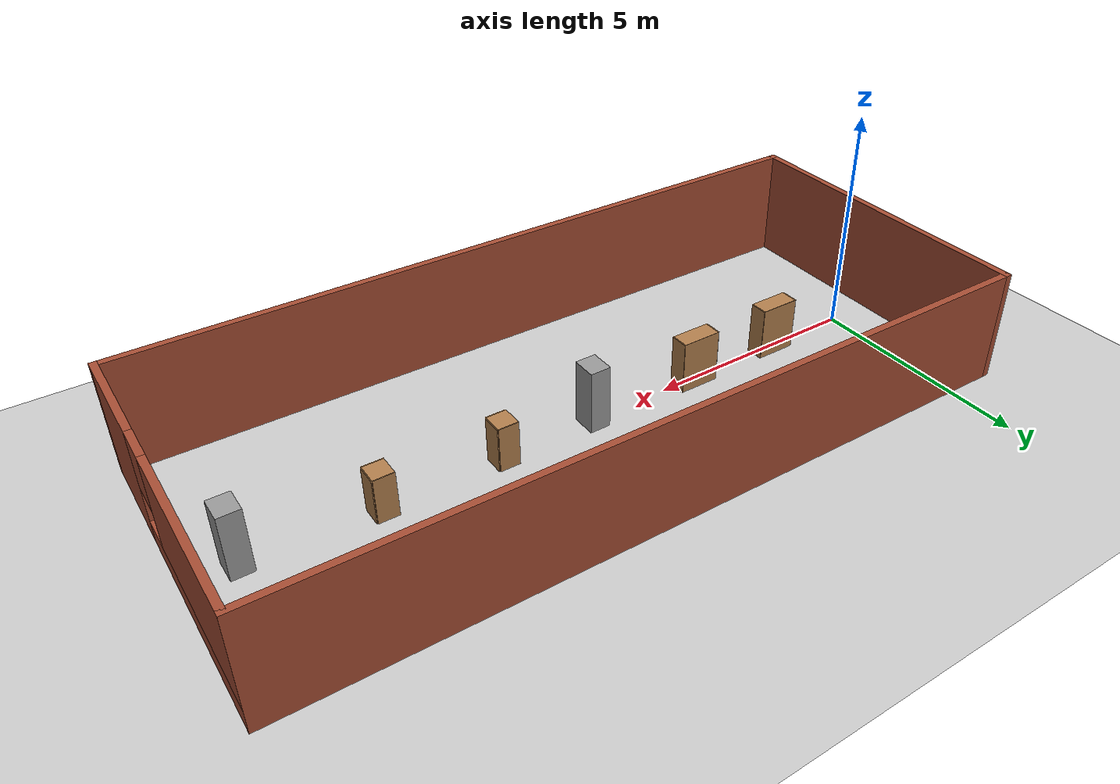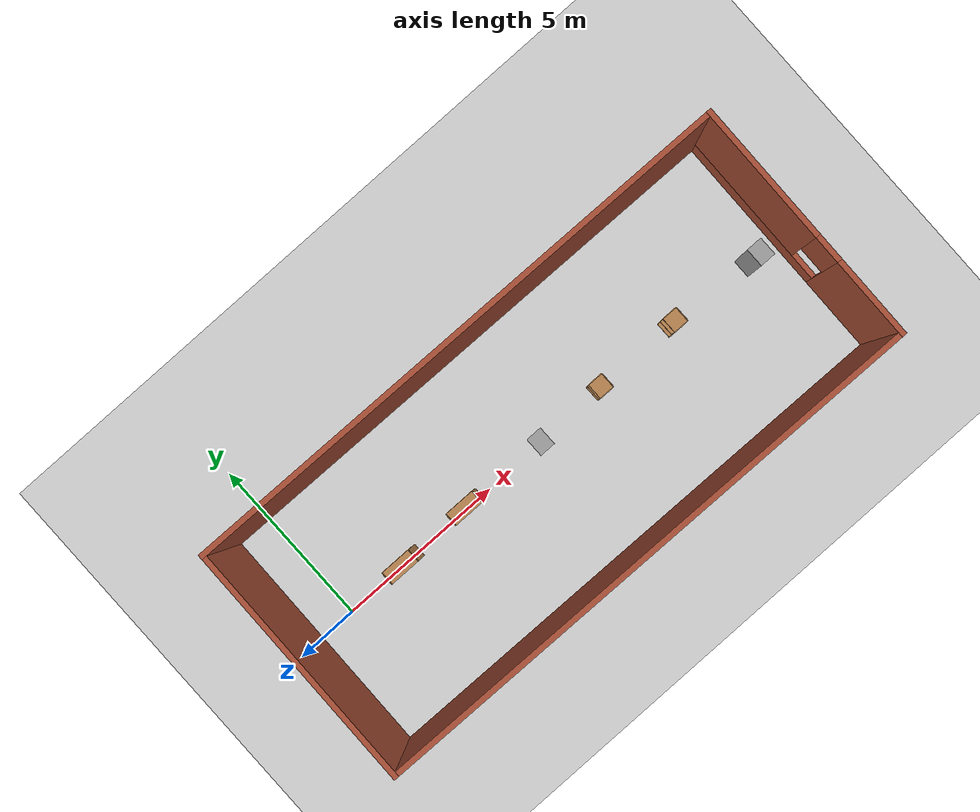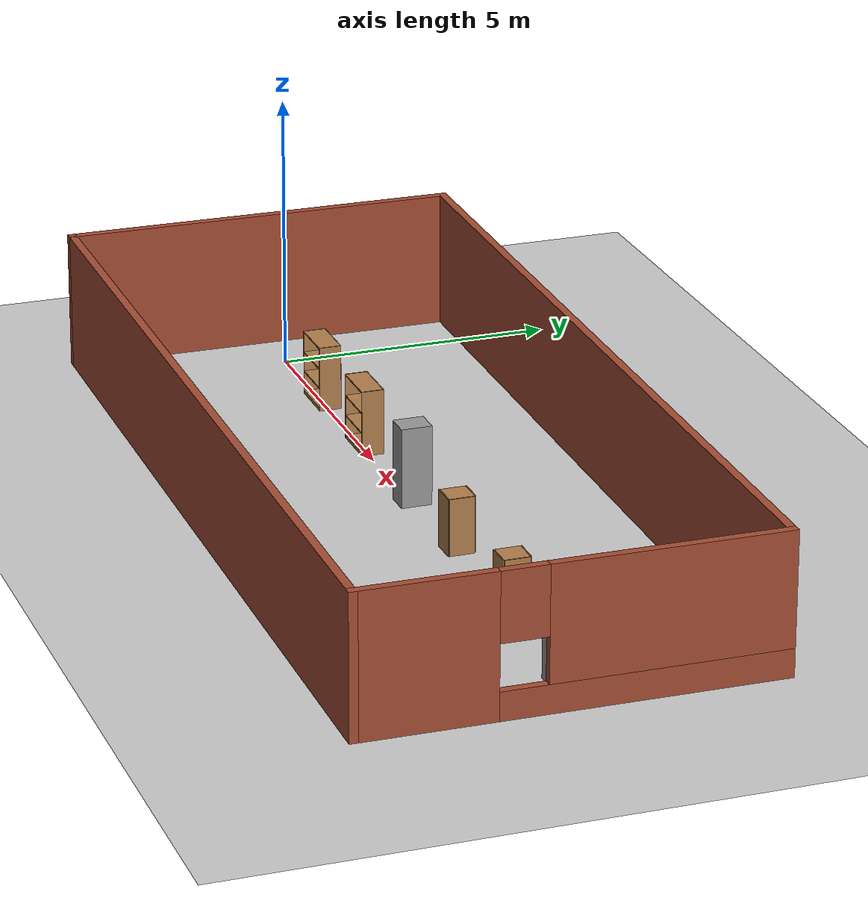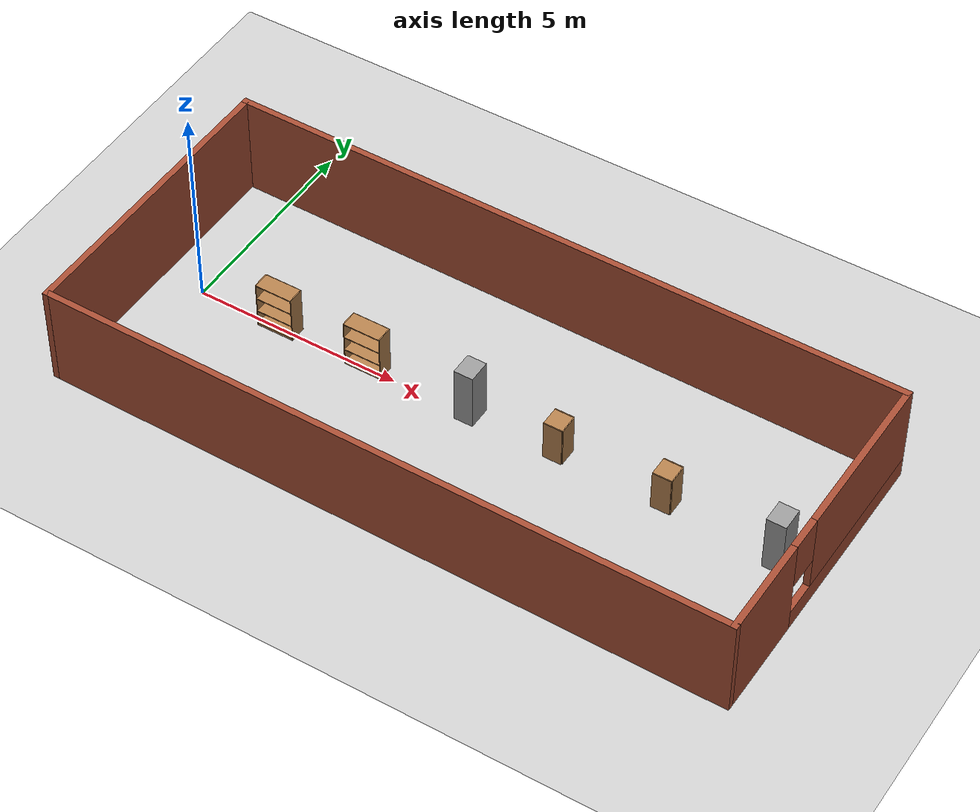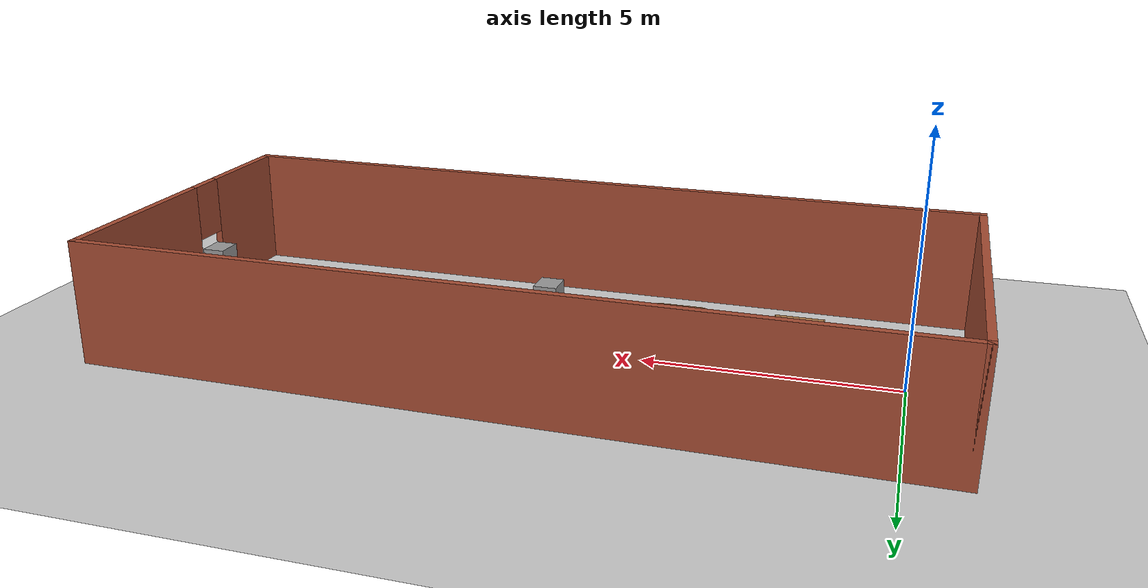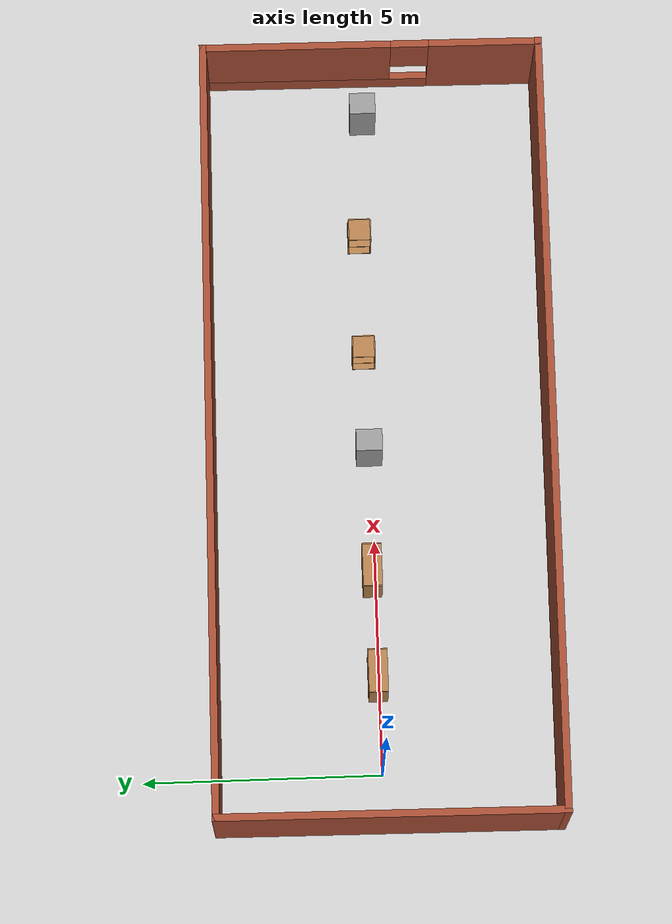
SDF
<sdf version="1.6">
 <world name="default">
  <light name="sun" type="directional">
   <pose>0 0 10 0 -0 0</pose>
   <diffuse>0.8 0.8 0.8 1</diffuse>
   <specular>0.2 0.2 0.2 1</specular>
   <attenuation>
    <range>1000</range>
    <constant>0.9</constant>
    <linear>0.01</linear>
    <quadratic>0.001</quadratic>
   </attenuation>
   <direction>-0.5 0.1 -0.9</direction>
  </light>
  <model name="ground_plane">
   <static>1</static>
   <link name="link">
    <collision name="collision">
     <geometry><plane><normal>0 0 1</normal><size>100 100</size></plane></geometry>
     <surface><friction><ode><mu>100</mu><mu2>50</mu2></ode></friction></surface>
    </collision>
    <visual name="visual">
     <cast_shadows>0</cast_shadows>
     <geometry><plane><normal>0 0 1</normal><size>100 100</size></plane></geometry>
     <material>
      <script><uri>file://media/materials/scripts/gazebo.material</uri><name>Gazebo/Grey</name></script>
     </material>
    </visual>
   </link>
  </model>
  <gravity>0 0 -9.8</gravity>
  <magnetic_field>6e-06 2.3e-05 -4.2e-05</magnetic_field>
  <atmosphere type="adiabatic"/>
  <physics name="default_physics" default="0" type="ode">
   <max_step_size>0.001</max_step_size>
   <real_time_factor>1</real_time_factor>
   <real_time_update_rate>1000</real_time_update_rate>
  </physics>
  <scene><ambient>0.4 0.4 0.4 1</ambient><background>0.7 0.7 0.7 1</background><shadows>1</shadows></scene>
  <audio><device>default</device></audio>
  <spherical_coordinates>
   <surface_model>EARTH_WGS84</surface_model>
   <latitude_deg>0</latitude_deg>
   <longitude_deg>0</longitude_deg>
   <elevation>0</elevation>
   <heading_deg>0</heading_deg>
  </spherical_coordinates>
  <model name="brickRoom">
   <pose>7.04678 -0.18264 0 0 -0 3.1327</pose>
   <link name="Wall_0">
    <pose>-8.175 0 0 0 -0 -1.5708</pose>
    <visual name="Wall_0_Visual_0">
     <pose>-2.42632 0 1.25 0 -0 0</pose>
     <geometry><box><size>2.39737 0.15 2.5</size></box></geometry>
     <material>
      <script><uri>file://media/materials/scripts/gazebo.material</uri><name>Gazebo/Bricks</name></script>
      <ambient>1 1 1 1</ambient>
     </material>
     <meta><layer>0</layer></meta>
    </visual>
    <collision name="Wall_0_Collision_0">
     <geometry><box><size>2.39737 0.15 2.5</size></box></geometry>
     <pose>-2.42632 0 1.25 0 -0 0</pose>
    </collision>
    <visual name="Wall_0_Visual_1">
     <pose>1.19868 0 0.25 0 -0 0</pose>
     <geometry><box><size>4.85263 0.15 0.5</size></box></geometry>
     <material>
      <script><uri>file://media/materials/scripts/gazebo.material</uri><name>Gazebo/Bricks</name></script>
      <ambient>1 1 1 1</ambient>
     </material>
     <meta><layer>0</layer></meta>
    </visual>
    <collision name="Wall_0_Collision_1">
     <geometry><box><size>4.85263 0.15 0.5</size></box></geometry>
     <pose>1.19868 0 0.25 0 -0 0</pose>
    </collision>
    <visual name="Wall_0_Visual_2">
     <pose>1.59868 0 1.5 0 -0 0</pose>
     <geometry><box><size>4.05263 0.15 2</size></box></geometry>
     <material>
      <script><uri>file://media/materials/scripts/gazebo.material</uri><name>Gazebo/Bricks</name></script>
      <ambient>1 1 1 1</ambient>
     </material>
     <meta><layer>0</layer></meta>
    </visual>
    <collision name="Wall_0_Collision_2">
     <geometry><box><size>4.05263 0.15 2</size></box></geometry>
     <pose>1.59868 0 1.5 0 -0 0</pose>
    </collision>
    <visual name="Wall_0_Visual_3">
     <pose>-0.827634 0 1.9 0 -0 0</pose>
     <geometry><box><size>0.8 0.15 1.2</size></box></geometry>
     <material>
      <script><uri>file://media/materials/scripts/gazebo.material</uri><name>Gazebo/Bricks</name></script>
      <ambient>1 1 1 1</ambient>
     </material>
     <meta><layer>0</layer></meta>
    </visual>
    <collision name="Wall_0_Collision_3">
     <geometry><box><size>0.8 0.15 1.2</size></box></geometry>
     <pose>-0.827634 0 1.9 0 -0 0</pose>
    </collision>
   </link>
   <link name="Wall_1">
    <collision name="Wall_1_Collision">
     <geometry><box><size>16.5 0.15 2.5</size></box></geometry>
     <pose>0 0 1.25 0 -0 0</pose>
    </collision>
    <visual name="Wall_1_Visual">
     <pose>0 0 1.25 0 -0 0</pose>
     <geometry><box><size>16.5 0.15 2.5</size></box></geometry>
     <material>
      <script><uri>file://media/materials/scripts/gazebo.material</uri><name>Gazebo/Bricks</name></script>
      <ambient>1 1 1 1</ambient>
     </material>
     <meta><layer>0</layer></meta>
    </visual>
    <pose>-0 -3.55 0 0 -0 0</pose>
   </link>
   <link name="Wall_2">
    <collision name="Wall_2_Collision">
     <geometry><box><size>7.25 0.15 2.5</size></box></geometry>
     <pose>0 0 1.25 0 -0 0</pose>
    </collision>
    <visual name="Wall_2_Visual">
     <pose>0 0 1.25 0 -0 0</pose>
     <geometry><box><size>7.25 0.15 2.5</size></box></geometry>
     <material>
      <script><uri>file://media/materials/scripts/gazebo.material</uri><name>Gazebo/Bricks</name></script>
      <ambient>1 1 1 1</ambient>
     </material>
     <meta><layer>0</layer></meta>
    </visual>
    <pose>8.175 0 0 0 -0 1.5708</pose>
   </link>
   <link name="Wall_3">
    <collision name="Wall_3_Collision">
     <geometry><box><size>16.5 0.15 2.5</size></box></geometry>
     <pose>0 0 1.25 0 -0 0</pose>
    </collision>
    <visual name="Wall_3_Visual">
     <pose>0 0 1.25 0 -0 0</pose>
     <geometry><box><size>16.5 0.15 2.5</size></box></geometry>
     <material>
      <script><uri>file://media/materials/scripts/gazebo.material</uri><name>Gazebo/Bricks</name></script>
      <ambient>1 1 1 1</ambient>
     </material>
     <meta><layer>0</layer></meta>
    </visual>
    <pose>-0 3.55 0 0 -0 3.14159</pose>
   </link>
   <static>1</static>
  </model>
  <model name="bookshelf">
   <static>1</static>
   <link name="link">
    <inertial><mass>1</mass></inertial>
    <collision name="back">
     <pose>0 0.005 0.6 0 -0 0</pose>
     <geometry><box><size>0.9 0.01 1.2</size></box></geometry>
    </collision>
    <visual name="visual1">
     <pose>0 0.005 0.6 0 -0 0</pose>
     <geometry><box><size>0.9 0.01 1.2</size></box></geometry>
     <material>
      <script><uri>file://media/materials/scripts/gazebo.material</uri><name>Gazebo/Wood</name></script>
     </material>
    </visual>
    <collision name="left_side">
     <pose>0.45 -0.195 0.6 0 -0 0</pose>
     <geometry><box><size>0.02 0.4 1.2</size></box></geometry>
    </collision>
    <visual name="visual2">
     <pose>0.45 -0.195 0.6 0 -0 0</pose>
     <geometry><box><size>0.02 0.4 1.2</size></box></geometry>
     <material>
      <script><uri>file://media/materials/scripts/gazebo.material</uri><name>Gazebo/Wood</name></script>
     </material>
    </visual>
    <collision name="right_side">
     <pose>-0.45 -0.195 0.6 0 -0 0</pose>
     <geometry><box><size>0.02 0.4 1.2</size></box></geometry>
    </collision>
    <visual name="visual3">
     <pose>-0.45 -0.195 0.6 0 -0 0</pose>
     <geometry><box><size>0.02 0.4 1.2</size></box></geometry>
     <material>
      <script><uri>file://media/materials/scripts/gazebo.material</uri><name>Gazebo/Wood</name></script>
     </material>
    </visual>
    <collision name="bottom">
     <pose>0 -0.195 0.03 0 -0 0</pose>
     <geometry><box><size>0.88 0.4 0.06</size></box></geometry>
    </collision>
    <visual name="visual4">
     <pose>0 -0.195 0.03 0 -0 0</pose>
     <geometry><box><size>0.88 0.4 0.06</size></box></geometry>
     <material>
      <script><uri>file://media/materials/scripts/gazebo.material</uri><name>Gazebo/Wood</name></script>
     </material>
    </visual>
    <collision name="top">
     <pose>0 -0.195 1.19 0 -0 0</pose>
     <geometry><box><size>0.88 0.4 0.02</size></box></geometry>
    </collision>
    <visual name="visual5">
     <pose>0 -0.195 1.19 0 -0 0</pose>
     <geometry><box><size>0.88 0.4 0.02</size></box></geometry>
     <material>
      <script><uri>file://media/materials/scripts/gazebo.material</uri><name>Gazebo/Wood</name></script>
     </material>
    </visual>
    <collision name="low_shelf">
     <pose>0 -0.195 0.43 0 -0 0</pose>
     <geometry><box><size>0.88 0.4 0.02</size></box></geometry>
    </collision>
    <visual name="visual6">
     <pose>0 -0.195 0.43 0 -0 0</pose>
     <geometry><box><size>0.88 0.4 0.02</size></box></geometry>
     <material>
      <script><uri>file://media/materials/scripts/gazebo.material</uri><name>Gazebo/Wood</name></script>
     </material>
    </visual>
    <collision name="high_shelf">
     <pose>0 -0.195 0.8 0 -0 0</pose>
     <geometry><box><size>0.88 0.4 0.02</size></box></geometry>
    </collision>
    <visual name="visual7">
     <pose>0 -0.195 0.8 0 -0 0</pose>
     <geometry><box><size>0.88 0.4 0.02</size></box></geometry>
     <material>
      <script><uri>file://media/materials/scripts/gazebo.material</uri><name>Gazebo/Wood</name></script>
     </material>
    </visual>
   </link>
   <pose>2.02949 0.237027 0 0 -0 0</pose>
  </model>
  <model name="bookshelf_0">
   <static>1</static>
   <link name="link">
    <inertial><mass>1</mass></inertial>
    <collision name="back">
     <pose>0 0.005 0.6 0 -0 0</pose>
     <geometry><box><size>0.9 0.01 1.2</size></box></geometry>
    </collision>
    <visual name="visual1">
     <pose>0 0.005 0.6 0 -0 0</pose>
     <geometry><box><size>0.9 0.01 1.2</size></box></geometry>
     <material>
      <script><uri>file://media/materials/scripts/gazebo.material</uri><name>Gazebo/Wood</name></script>
     </material>
    </visual>
    <collision name="left_side">
     <pose>0.45 -0.195 0.6 0 -0 0</pose>
     <geometry><box><size>0.02 0.4 1.2</size></box></geometry>
    </collision>
    <visual name="visual2">
     <pose>0.45 -0.195 0.6 0 -0 0</pose>
     <geometry><box><size>0.02 0.4 1.2</size></box></geometry>
     <material>
      <script><uri>file://media/materials/scripts/gazebo.material</uri><name>Gazebo/Wood</name></script>
     </material>
    </visual>
    <collision name="right_side">
     <pose>-0.45 -0.195 0.6 0 -0 0</pose>
     <geometry><box><size>0.02 0.4 1.2</size></box></geometry>
    </collision>
    <visual name="visual3">
     <pose>-0.45 -0.195 0.6 0 -0 0</pose>
     <geometry><box><size>0.02 0.4 1.2</size></box></geometry>
     <material>
      <script><uri>file://media/materials/scripts/gazebo.material</uri><name>Gazebo/Wood</name></script>
     </material>
    </visual>
    <collision name="bottom">
     <pose>0 -0.195 0.03 0 -0 0</pose>
     <geometry><box><size>0.88 0.4 0.06</size></box></geometry>
    </collision>
    <visual name="visual4">
     <pose>0 -0.195 0.03 0 -0 0</pose>
     <geometry><box><size>0.88 0.4 0.06</size></box></geometry>
     <material>
      <script><uri>file://media/materials/scripts/gazebo.material</uri><name>Gazebo/Wood</name></script>
     </material>
    </visual>
    <collision name="top">
     <pose>0 -0.195 1.19 0 -0 0</pose>
     <geometry><box><size>0.88 0.4 0.02</size></box></geometry>
    </collision>
    <visual name="visual5">
     <pose>0 -0.195 1.19 0 -0 0</pose>
     <geometry><box><size>0.88 0.4 0.02</size></box></geometry>
     <material>
      <script><uri>file://media/materials/scripts/gazebo.material</uri><name>Gazebo/Wood</name></script>
     </material>
    </visual>
    <collision name="low_shelf">
     <pose>0 -0.195 0.43 0 -0 0</pose>
     <geometry><box><size>0.88 0.4 0.02</size></box></geometry>
    </collision>
    <visual name="visual6">
     <pose>0 -0.195 0.43 0 -0 0</pose>
     <geometry><box><size>0.88 0.4 0.02</size></box></geometry>
     <material>
      <script><uri>file://media/materials/scripts/gazebo.material</uri><name>Gazebo/Wood</name></script>
     </material>
    </visual>
    <collision name="high_shelf">
     <pose>0 -0.195 0.8 0 -0 0</pose>
     <geometry><box><size>0.88 0.4 0.02</size></box></geometry>
    </collision>
    <visual name="visual7">
     <pose>0 -0.195 0.8 0 -0 0</pose>
     <geometry><box><size>0.88 0.4 0.02</size></box></geometry>
     <material>
      <script><uri>file://media/materials/scripts/gazebo.material</uri><name>Gazebo/Wood</name></script>
     </material>
    </visual>
   </link>
   <pose>4.26372 0.277133 0 0 -0 0</pose>
  </model>
  <model name="unit_box">
   <pose>6.87676 0.054802 0.718868 -2e-06 2e-06 0.000491</pose>
   <link name="link">
    <inertial>
     <mass>1</mass>
     <inertia>
      <ixx>0.166667</ixx>
      <ixy>0</ixy>
      <ixz>0</ixz>
      <iyy>0.166667</iyy>
      <iyz>0</iyz>
      <izz>0.166667</izz>
     </inertia>
    </inertial>
    <collision name="collision"><geometry><box><size>0.460124 0.547287 1.43774</size></box></geometry></collision>
    <visual name="visual">
     <geometry><box><size>0.460124 0.547287 1.43774</size></box></geometry>
     <material>
      <script><name>Gazebo/Grey</name><uri>file://media/materials/scripts/gazebo.material</uri></script>
     </material>
    </visual>
   </link>
  </model>
  <model name="unit_box_clone">
   <pose>14.2854 -0.058156 0.718869 3e-06 -2e-06 -1.2e-05</pose>
   <link name="link">
    <inertial>
     <mass>1</mass>
     <inertia>
      <ixx>0.166667</ixx>
      <ixy>0</ixy>
      <ixz>0</ixz>
      <iyy>0.166667</iyy>
      <iyz>0</iyz>
      <izz>0.166667</izz>
     </inertia>
    </inertial>
    <collision name="collision"><geometry><box><size>0.460124 0.547287 1.43774</size></box></geometry></collision>
    <visual name="visual">
     <geometry><box><size>0.460124 0.547287 1.43774</size></box></geometry>
     <material>
      <script><name>Gazebo/Grey</name><uri>file://media/materials/scripts/gazebo.material</uri></script>
     </material>
    </visual>
   </link>
  </model>
  <model name="cabinet">
   <static>1</static>
   <link name="cabinet_bottom_plate">
    <inertial>
     <pose>0 0 -1 0 -0 0</pose>
     <inertia><ixx>2.05</ixx><ixy>0</ixy><ixz>0</ixz><iyy>2.05</iyy><iyz>0</iyz><izz>2.05</izz></inertia>
     <mass>25</mass>
    </inertial>
    <collision name="cabinet_bottom_plate_geom">
     <pose>0 0 0.01 0 -0 0</pose>
     <geometry><box><size>0.45 0.45 0.02</size></box></geometry>
    </collision>
    <visual name="cabinet_bottom_plate_geom_visual">
     <pose>0 0 0.01 0 -0 0</pose>
     <geometry><box><size>0.45 0.45 0.02</size></box></geometry>
     <material>
      <script><uri>file://media/materials/scripts/gazebo.material</uri><name>Gazebo/Wood</name></script>
     </material>
    </visual>
    <collision name="cabinet_bottom_plate_geom_cabinet_back_plate">
     <pose>0.235 0 0.51 0 -0 0</pose>
     <geometry><box><size>0.02 0.45 1.02</size></box></geometry>
    </collision>
    <visual name="cabinet_bottom_plate_geom_cabinet_back_plate_visual">
     <pose>0.235 0 0.51 0 -0 0</pose>
     <geometry><box><size>0.02 0.45 1.02</size></box></geometry>
     <material>
      <script><uri>file://media/materials/scripts/gazebo.material</uri><name>Gazebo/Wood</name></script>
     </material>
    </visual>
    <collision name="cabinet_bottom_plate_geom_cabinet_left_plate">
     <pose>0 0.235 0.51 0 -0 0</pose>
     <geometry><box><size>0.45 0.02 1.02</size></box></geometry>
    </collision>
    <visual name="cabinet_bottom_plate_geom_cabinet_left_plate_visual">
     <pose>0 0.235 0.51 0 -0 0</pose>
     <geometry><box><size>0.45 0.02 1.02</size></box></geometry>
     <material>
      <script><uri>file://media/materials/scripts/gazebo.material</uri><name>Gazebo/Wood</name></script>
     </material>
    </visual>
    <collision name="cabinet_bottom_plate_geom_cabinet_middle_plate">
     <pose>0 0 0.51 0 -0 0</pose>
     <geometry><box><size>0.45 0.45 0.02</size></box></geometry>
    </collision>
    <visual name="cabinet_bottom_plate_geom_cabinet_middle_plate_visual">
     <pose>0 0 0.51 0 -0 0</pose>
     <geometry><box><size>0.45 0.45 0.02</size></box></geometry>
     <material>
      <script><uri>file://media/materials/scripts/gazebo.material</uri><name>Gazebo/Wood</name></script>
     </material>
    </visual>
    <collision name="cabinet_bottom_plate_geom_cabinet_right_plate">
     <pose>0 -0.235 0.51 0 -0 0</pose>
     <geometry><box><size>0.45 0.02 1.02</size></box></geometry>
    </collision>
    <visual name="cabinet_bottom_plate_geom_cabinet_right_plate_visual">
     <pose>0 -0.235 0.51 0 -0 0</pose>
     <geometry><box><size>0.45 0.02 1.02</size></box></geometry>
     <material>
      <script><uri>file://media/materials/scripts/gazebo.material</uri><name>Gazebo/Wood</name></script>
     </material>
    </visual>
    <collision name="cabinet_bottom_plate_geom_cabinet_top_plate">
     <pose>0 0 1.01 0 -0 0</pose>
     <geometry><box><size>0.45 0.45 0.02</size></box></geometry>
    </collision>
    <visual name="cabinet_bottom_plate_geom_cabinet_top_plate_visual">
     <pose>0 0 1.01 0 -0 0</pose>
     <geometry><box><size>0.45 0.45 0.02</size></box></geometry>
     <material>
      <script><uri>file://media/materials/scripts/gazebo.material</uri><name>Gazebo/Wood</name></script>
     </material>
    </visual>
   </link>
   <pose>9.00674 0.095302 0 0 -0 0</pose>
  </model>
  <model name="cabinet_0">
   <static>1</static>
   <link name="cabinet_bottom_plate">
    <inertial>
     <pose>0 0 -1 0 -0 0</pose>
     <inertia><ixx>2.05</ixx><ixy>0</ixy><ixz>0</ixz><iyy>2.05</iyy><iyz>0</iyz><izz>2.05</izz></inertia>
     <mass>25</mass>
    </inertial>
    <collision name="cabinet_bottom_plate_geom">
     <pose>0 0 0.01 0 -0 0</pose>
     <geometry><box><size>0.45 0.45 0.02</size></box></geometry>
    </collision>
    <visual name="cabinet_bottom_plate_geom_visual">
     <pose>0 0 0.01 0 -0 0</pose>
     <geometry><box><size>0.45 0.45 0.02</size></box></geometry>
     <material>
      <script><uri>file://media/materials/scripts/gazebo.material</uri><name>Gazebo/Wood</name></script>
     </material>
    </visual>
    <collision name="cabinet_bottom_plate_geom_cabinet_back_plate">
     <pose>0.235 0 0.51 0 -0 0</pose>
     <geometry><box><size>0.02 0.45 1.02</size></box></geometry>
    </collision>
    <visual name="cabinet_bottom_plate_geom_cabinet_back_plate_visual">
     <pose>0.235 0 0.51 0 -0 0</pose>
     <geometry><box><size>0.02 0.45 1.02</size></box></geometry>
     <material>
      <script><uri>file://media/materials/scripts/gazebo.material</uri><name>Gazebo/Wood</name></script>
     </material>
    </visual>
    <collision name="cabinet_bottom_plate_geom_cabinet_left_plate">
     <pose>0 0.235 0.51 0 -0 0</pose>
     <geometry><box><size>0.45 0.02 1.02</size></box></geometry>
    </collision>
    <visual name="cabinet_bottom_plate_geom_cabinet_left_plate_visual">
     <pose>0 0.235 0.51 0 -0 0</pose>
     <geometry><box><size>0.45 0.02 1.02</size></box></geometry>
     <material>
      <script><uri>file://media/materials/scripts/gazebo.material</uri><name>Gazebo/Wood</name></script>
     </material>
    </visual>
    <collision name="cabinet_bottom_plate_geom_cabinet_middle_plate">
     <pose>0 0 0.51 0 -0 0</pose>
     <geometry><box><size>0.45 0.45 0.02</size></box></geometry>
    </collision>
    <visual name="cabinet_bottom_plate_geom_cabinet_middle_plate_visual">
     <pose>0 0 0.51 0 -0 0</pose>
     <geometry><box><size>0.45 0.45 0.02</size></box></geometry>
     <material>
      <script><uri>file://media/materials/scripts/gazebo.material</uri><name>Gazebo/Wood</name></script>
     </material>
    </visual>
    <collision name="cabinet_bottom_plate_geom_cabinet_right_plate">
     <pose>0 -0.235 0.51 0 -0 0</pose>
     <geometry><box><size>0.45 0.02 1.02</size></box></geometry>
    </collision>
    <visual name="cabinet_bottom_plate_geom_cabinet_right_plate_visual">
     <pose>0 -0.235 0.51 0 -0 0</pose>
     <geometry><box><size>0.45 0.02 1.02</size></box></geometry>
     <material>
      <script><uri>file://media/materials/scripts/gazebo.material</uri><name>Gazebo/Wood</name></script>
     </material>
    </visual>
    <collision name="cabinet_bottom_plate_geom_cabinet_top_plate">
     <pose>0 0 1.01 0 -0 0</pose>
     <geometry><box><size>0.45 0.45 0.02</size></box></geometry>
    </collision>
    <visual name="cabinet_bottom_plate_geom_cabinet_top_plate_visual">
     <pose>0 0 1.01 0 -0 0</pose>
     <geometry><box><size>0.45 0.45 0.02</size></box></geometry>
     <material>
      <script><uri>file://media/materials/scripts/gazebo.material</uri><name>Gazebo/Wood</name></script>
     </material>
    </visual>
   </link>
   <pose>11.5896 0.09549 0 0 -0 0</pose>
  </model>
 </world>
</sdf>
